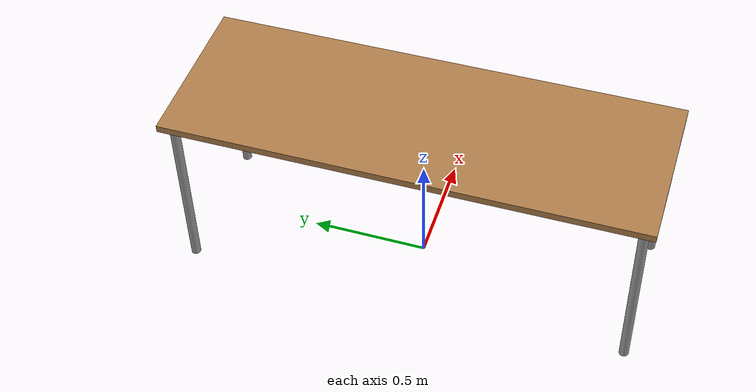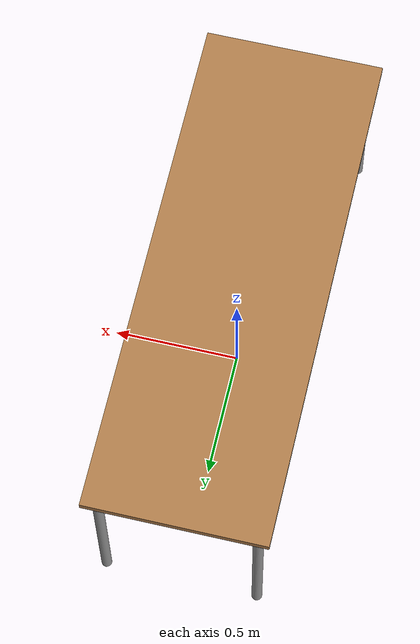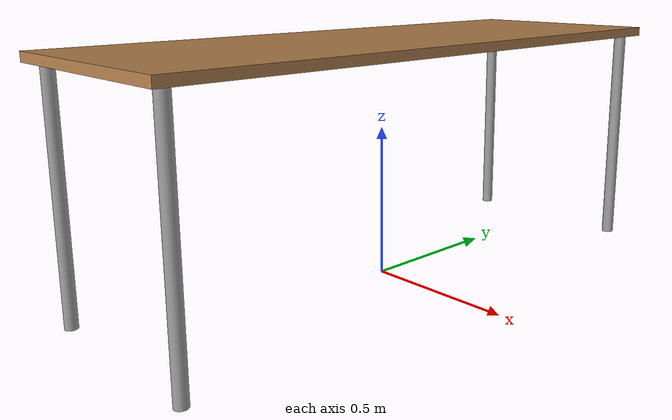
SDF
<!-- ref: https://github.com/zengzhen/zhen_baxter_moveit -->
<?xml version="1.0" ?>
<sdf version="1.4">
<model name="table">
    <pose>0 0.0 0 0 0 0</pose>
    <static>true</static>
    <link name="link">
      <collision name="surface">
        <pose>0 0 0.778 0 0 0</pose>
        <geometry>
          <box>
            <size>0.7 2.0 0.03</size>
          </box>
        </geometry>
        <surface>
          <friction>
            <ode>
              <mu>10</mu>
              <mu2>10</mu2>
            </ode>
          </friction>
        </surface>
      </collision>
      <visual name="visual1">
        <pose>0 0 0.778 0 0 0</pose>
        <geometry>
          <box>
            <size>0.7 2.0 0.03</size>
          </box>
        </geometry>
        <material>
          <script>
            <uri>file://media/materials/scripts/gazebo.material</uri>
            <name>Gazebo/Wood</name>
          </script>
        </material>
      </visual>
      <collision name="front_left_leg">
        <pose>0.3 0.95 0.3815 0 0 0</pose>
        <geometry>
          <cylinder>
            <radius>0.02</radius>
            <length>0.763</length>
          </cylinder>
        </geometry>
      </collision>
      <visual name="front_left_leg">
        <pose>0.3 0.95 0.3815 0 0 0</pose>
        <geometry>
          <cylinder>
            <radius>0.02</radius>
            <length>0.763</length>
          </cylinder>
        </geometry>
        <material>
          <script>
            <uri>file://media/materials/scripts/gazebo.material</uri>
            <name>Gazebo/Grey</name>
          </script>
        </material>
      </visual>
      <collision name="front_right_leg">
        <pose>0.3 -0.95 0.3815 0 0 0</pose>
        <geometry>
          <cylinder>
            <radius>0.02</radius>
            <length>0.763</length>
          </cylinder>
        </geometry>
      </collision>
      <visual name="front_right_leg">
        <pose>0.3 -0.95 0.3815 0 0 0</pose>
        <geometry>
          <cylinder>
            <radius>0.02</radius>
            <length>0.763</length>
          </cylinder>
        </geometry>
        <material>
          <script>
            <uri>file://media/materials/scripts/gazebo.material</uri>
            <name>Gazebo/Grey</name>
          </script>
        </material>
      </visual>
      <collision name="back_right_leg">
        <pose>-0.3 -0.95 0.3815 0 0 0</pose>
        <geometry>
          <cylinder>
            <radius>0.02</radius>
            <length>0.763</length>
          </cylinder>
        </geometry>
      </collision>
      <visual name="back_right_leg">
        <pose>-0.3 -0.95 0.3815 0 0 0</pose>
        <geometry>
          <cylinder>
            <radius>0.02</radius>
            <length>0.763</length>
          </cylinder>
        </geometry>
        <material>
          <script>
            <uri>file://media/materials/scripts/gazebo.material</uri>
            <name>Gazebo/Grey</name>
          </script>
        </material>
      </visual>
      <collision name="back_left_leg">
        <pose>-0.3 0.95 0.3815 0 0 0</pose>
        <geometry>
          <cylinder>
            <radius>0.02</radius>
            <length>0.763</length>
          </cylinder>
        </geometry>
      </collision>
      <visual name="back_left_leg">
        <pose>-0.3 0.95 0.3815 0 0 0</pose>
        <geometry>
          <cylinder>
            <radius>0.02</radius>
            <length>0.763</length>
          </cylinder>
        </geometry>
        <material>
          <script>
            <uri>file://media/materials/scripts/gazebo.material</uri>
            <name>Gazebo/Grey</name>
          </script>
        </material>
      </visual>
    </link>
</model>
</sdf>
